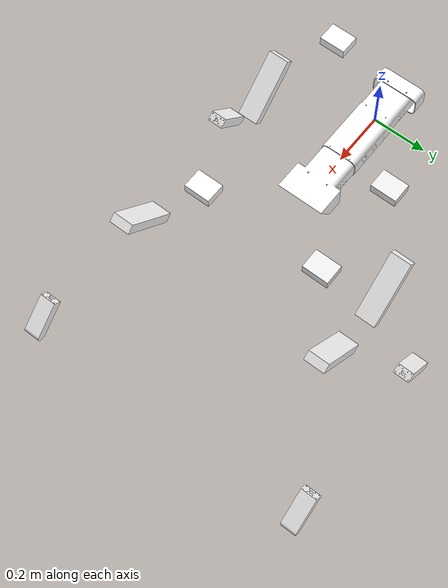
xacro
<?xml version="1.0"?>
<robot name="fyp_quadruped" xmlns:xacro="http://ros.org/wiki/xacro">

  <!-- Model Dimensions -->
  <xacro:property name="pi" value="3.1415" />
  <xacro:property name="body_length" value="0.55" />
  <xacro:property name="body_width" value="0.16" />
  <xacro:property name="body_height" value="0.08" />
  <xacro:property name="shoulder_length" value="0.07" />
  <xacro:property name="shoulder_width" value="0.09" />
  <xacro:property name="shoulder_height" value="0.03" />
  <xacro:property name="thigh_length" value="0.03" />
  <xacro:property name="thigh_width" value="0.07" />
  <xacro:property name="thigh_height" value="0.21" />
  <xacro:property name="shank_length" value="0.03" />
  <xacro:property name="shank_width" value="0.05" />
  <xacro:property name="shank_height" value="0.13" />
  <xacro:property name="damping_value" value="10" />
  <xacro:property name="friction_value" value="0.1" />

  <!-- Import Rviz colors -->
  <xacro:include filename="$(find fyp_quadruped)/urdf/materials.xacro" />

  <!-- Inertias -->
  <xacro:macro name="box_inertial" params="mass length width height">
    <inertial>
      <mass value="${mass}" />
      <inertia ixx="${mass*(height*height+length*length)/12.0}" ixy="0.0" ixz="0.0" iyy="${mass*(width*width+length*length)/12.0}" iyz="0.0" izz="${mass*(width*width+height*height)/12.0}" />
    </inertial>
  </xacro:macro>

  <!-- Main Body -->
  <link name="dummy_link">
    <visual>
      <geometry>
        <box size="0.01 0.01 0.01"/>
      </geometry>
    </visual>
    <collision>
      <geometry>
        <box size="0.01 0.01 0.01"/>
      </geometry>
    </collision>
    <inertial>
      <mass value="0.01" />
      <inertia ixx="0.00001" ixy="0.0" ixz="0.0" iyy="0.00001" iyz="0.0" izz="0.00001" />
    </inertial>
  </link>

  <link name="base_link">
    <visual>
      <origin xyz="0.0 0.0 0.2416"/>
      <geometry>
       <mesh filename="package://fyp_quadruped/meshes/body/body.stl" scale="0.001 0.001 0.001"/>
      </geometry>
      <material name="white"/>
    </visual>
    <collision>
      <origin xyz="0.0 0.0 0.2416"/>
      <geometry>
        <box size="${body_width} ${body_width} ${body_height}"/>
      </geometry>
    </collision>
    <inertial>
      <mass value="3" />
      <inertia ixx="${3*(2*2+5*5)/12.0}" ixy="0.0" ixz="0.0" iyy="${3*(3*3+5*5)/12.0}" iyz="0.0" izz="${3*(3*3+2*2)/12.0}" />
    </inertial>
  </link>

  <joint name="dummy_to_base_joint" type="fixed">
    <parent link="dummy_link"/>
    <child link="base_link"/>
    <origin xyz="0.0 0.0 0.0"/>
  </joint>

  <gazebo reference="base_link">
    <mu1>100000.0</mu1>
    <mu2>100000.0</mu2>
    <material>Gazebo/White</material>
  </gazebo>

  <!--Left Front Leg-->
  <link name="shoulder_link_lf">
    <visual>
      <origin xyz="0.38 0.1415 0.2616"/>
      <geometry>
       <mesh filename="package://fyp_quadruped/meshes/leg/shoulder.stl" scale="0.001 0.001 0.001"/>
      </geometry>
    </visual>
    <collision>
      <origin xyz="0.38 0.1415 0.2616"/>
      <geometry>
        <box size="${shoulder_length} ${shoulder_width} ${shoulder_height}"/>
      </geometry>
      <material name="white"/>
    </collision>
    <xacro:box_inertial mass="${0.0625}" length="${shoulder_length}" width="${shoulder_width}" height="${shoulder_height}"/>
  </link>

  <joint name="shoulder_joint_lf" type="revolute">
    <limit effort="100.0" lower="${-0.5*pi}" upper="${0.5*pi}" velocity="0.5"/>
    <parent link="base_link"/>
    <child link="shoulder_link_lf"/>
    <origin xyz="0.38 0.1415 0.2616"/>
    <axis xyz="1 0 0"/>
    <dynamics damping="${damping_value}" friction="${friction_value}"/>
  </joint>
  <gazebo reference="shoulder_link_lf">
    <mu1>100000.0</mu1>
    <mu2>100000.0</mu2>
    <material>Gazebo/White</material>
  </gazebo>

  <link name="thigh_link_lf">
    <visual>
      <origin xyz="0.2565 0.16 0.1131" rpy="0.0 0.785 0.0"/>
      <geometry>
       <mesh filename="package://fyp_quadruped/meshes/leg/thigh.stl" scale="0.001 0.001 0.001"/>
      </geometry>
      <material name="white"/>
    </visual>
    <collision>
      <origin xyz="0.2565 0.16 0.1131" rpy="0.0 0.785 0.0"/>
      <geometry>
        <box size="${thigh_length} ${thigh_width} ${thigh_height}"/>
      </geometry>
    </collision>
    <xacro:box_inertial mass="${0.125}" length="${thigh_length}" width="${thigh_width}" height="${thigh_height}"/>
  </link>

  <joint name="elbow_joint_lf" type="revolute">
    <limit effort="100.0" lower="${-0.5*pi}" upper="${0.5*pi}" velocity="0.5"/>
    <parent link="shoulder_link_lf"/>
    <child link="thigh_link_lf"/>
    <origin xyz="0.2565 0.16 0.1131" rpy="0.0 0.0 0.0"/>
    <axis xyz="0 1 0"/>
    <dynamics damping="${damping_value}" friction="${friction_value}"/>
  </joint>
  <gazebo reference="thigh_link_lf">
    <mu1>100000.0</mu1>
    <mu2>100000.0</mu2>
    <material>Gazebo/White</material>
  </gazebo>

  <link name="shank_link_lf">
    <visual>
      <origin xyz="0.3696 0.17 0.0" rpy="0.0 5.5 0.0"/>
      <geometry>
       <mesh filename="package://fyp_quadruped/meshes/leg/shank.stl" scale="0.001 0.001 0.001"/>
      </geometry>
      <material name="white"/>
    </visual>
    <collision>
      <origin xyz="0.3696 0.17 0.0" rpy="0.0 5.5 0.0"/>
      <geometry>
        <box size="${shank_length} ${shank_width} ${shank_height}"/>
      </geometry>
    </collision>
    <xacro:box_inertial mass="${0.125}" length="${shank_length}" width="${shank_width}" height="${shank_height}"/>
  </link>

  <joint name="knee_joint_lf" type="revolute">
    <limit effort="100.0" lower="${-0.5*pi}" upper="${0.5*pi}" velocity="0.5"/>
    <origin xyz="0.3696 0.17 0.0"/>
    <axis xyz="0 1 0"/>
    <parent link="thigh_link_lf"/>
    <child link="shank_link_lf"/>
    <dynamics damping="${damping_value}" friction="${friction_value}"/>
  </joint>
  <gazebo reference="shank_link_lf">
    <mu1>100000.0</mu1>
    <mu2>100000.0</mu2>
    <material>Gazebo/White</material>
  </gazebo>

 <!--Right Front Leg-->
  <link name="shoulder_link_rf">
    <visual>
      <origin xyz="0.38 -0.064 0.2616"/>
      <geometry>
       <mesh filename="package://fyp_quadruped/meshes/leg/shoulder.stl" scale="0.001 0.001 0.001"/>
      </geometry>
      <material name="white"/>
    </visual>
    <collision>
      <origin xyz="0.38 -0.064 0.2616"/>
      <geometry>
        <box size="${shoulder_length} ${shoulder_width} ${shoulder_height}"/>
      </geometry>
    </collision>
    <xacro:box_inertial mass="${0.0625}" length="${shoulder_length}" width="${shoulder_width}" height="${shoulder_height}"/>
  </link>

  <joint name="shoulder_joint_rf" type="revolute">
    <limit effort="100.0" lower="${-0.5*pi}" upper="${0.5*pi}" velocity="0.5"/>
    <origin xyz="0.38 -0.064 0.2616"/>
    <axis xyz="1 0 0"/>
    <parent link="base_link"/>
    <child link="shoulder_link_rf"/>
    <dynamics damping="${damping_value}" friction="${friction_value}"/>
  </joint>
  <gazebo reference="shoulder_link_rf">
    <mu1>100000.0</mu1>
    <mu2>100000.0</mu2>
    <material>Gazebo/White</material>
  </gazebo>

  <link name="thigh_link_rf">
    <visual>q
      <origin xyz="0.2565 -0.064 0.1131" rpy="0.0 0.785 0.0"/>
      <geometry>
       <mesh filename="package://fyp_quadruped/meshes/leg/thigh.stl" scale="0.001 0.001 0.001"/>
      </geometry>
      <material name="white"/>
    </visual>
    <collision>
      <origin xyz="0.2565 -0.064 0.1131" rpy="0.0 0.785 0.0"/>
      <geometry>
        <box size="${thigh_length} ${thigh_width} ${thigh_height}"/>
      </geometry>
    </collision>
    <xacro:box_inertial mass="${0.125}" length="${thigh_length}" width="${thigh_width}" height="${thigh_height}"/>
  </link>

  <joint name="elbow_joint_rf" type="revolute">
    <limit effort="100.0" lower="${-0.5*pi}" upper="${0.5*pi}" velocity="0.5"/>
    <parent link="shoulder_link_rf"/>
    <child link="thigh_link_rf"/>
    <origin xyz="0.2565 -0.064 0.1131" rpy="0.0 0.0 0.0"/>
    <axis xyz="0 1 0"/>
    <dynamics damping="${damping_value}" friction="${friction_value}"/>
  </joint>
  <gazebo reference="thigh_link_rf">
    <mu1>100000.0</mu1>
    <mu2>100000.0</mu2>
    <material>Gazebo/White</material>
  </gazebo>

  <link name="shank_link_rf">
    <visual>
      <origin xyz="0.3696 -0.06 0.0" rpy="0.0 5.5 0.0"/>
      <geometry>
       <mesh filename="package://fyp_quadruped/meshes/leg/shank.stl" scale="0.001 0.001 0.001"/>
      </geometry>
      <material name="white"/>
    </visual>
    <collision>
      <origin xyz="0.3696 -0.06 0.0" rpy="0.0 5.5 0.0"/>
      <geometry>
        <box size="${shank_length} ${shank_width} ${shank_height}"/>
      </geometry>
    </collision>
    <xacro:box_inertial mass="${0.125}" length="${shank_length}" width="${shank_width}" height="${shank_height}"/>
  </link>

  <joint name="knee_joint_rf" type="revolute">
    <limit effort="100.0" lower="${-0.5*pi}" upper="${0.5*pi}" velocity="0.5"/>
    <origin xyz="0.3696 -0.06 0.0"/>
    <axis xyz="0 1 0"/>
    <parent link="thigh_link_rf"/>
    <child link="shank_link_rf"/>
    <dynamics damping="${damping_value}" friction="${friction_value}"/>
  </joint>
  <gazebo reference="shank_link_rf">
    <mu1>100000.0</mu1>
    <mu2>100000.0</mu2>
    <material>Gazebo/White</material>
  </gazebo>

  <!--Left Back Leg-->
  <link name="shoulder_link_lb">
    <visual>
      <origin xyz="0.06 0.1415 0.2616"/>
      <geometry>
       <mesh filename="package://fyp_quadruped/meshes/leg/shoulder.stl" scale="0.001 0.001 0.001"/>
      </geometry>
    </visual>
    <collision>
      <origin xyz="0.06 0.1415 0.2616"/>
      <geometry>
        <box size="${shoulder_length} ${shoulder_width} ${shoulder_height}"/>
      </geometry>
      <material name="white"/>
    </collision>
    <xacro:box_inertial mass="${0.0625}" length="${shoulder_length}" width="${shoulder_width}" height="${shoulder_height}"/>
  </link>

  <joint name="shoulder_joint_lb" type="revolute">
    <limit effort="100.0" lower="${-0.5*pi}" upper="${0.5*pi}" velocity="0.5"/>
    <parent link="base_link"/>
    <child link="shoulder_link_lb"/>
    <origin xyz="0.38 0.1415 0.2616"/>
    <axis xyz="1 0 0"/>
    <dynamics damping="${damping_value}" friction="${friction_value}"/>
  </joint>
  <gazebo reference="shoulder_link_lb">
    <mu1>100000.0</mu1>
    <mu2>100000.0</mu2>
    <material>Gazebo/White</material>
  </gazebo>

  <link name="thigh_link_lb">
    <visual>
      <origin xyz="0.2085 0.16 0.0919" rpy="0.0 5.5 0.0"/>
      <geometry>
       <mesh filename="package://fyp_quadruped/meshes/leg/thigh.stl" scale="0.001 0.001 0.001"/>
      </geometry>
      <material name="white"/>
    </visual>
    <collision>
      <origin xyz="0.2085 0.16 0.0919" rpy="0.0 5.5 0.0"/>
      <geometry>
        <box size="${thigh_length} ${thigh_width} ${thigh_height}"/>
      </geometry>
    </collision>
    <xacro:box_inertial mass="${0.125}" length="${thigh_length}" width="${thigh_width}" height="${thigh_height}"/>
  </link>

  <joint name="elbow_joint_lb" type="revolute">
    <limit effort="100.0" lower="${-0.5*pi}" upper="${0.5*pi}" velocity="0.5"/>
    <parent link="shoulder_link_lb"/>
    <child link="thigh_link_lb"/>
    <origin xyz="0.2085 0.16 0.0919" rpy="0.0 0.0 0.0"/>
    <axis xyz="0 1 0"/>
    <dynamics damping="${damping_value}" friction="${friction_value}"/>
  </joint>
  <gazebo reference="thigh_link_lb">
    <mu1>100000.0</mu1>
    <mu2>100000.0</mu2>
    <material>Gazebo/White</material>
  </gazebo>

  <link name="shank_link_lb">
    <visual>
      <origin xyz="0.0954 0.17 0.0212" rpy="0.0 0.785 0.0"/>
      <geometry>
       <mesh filename="package://fyp_quadruped/meshes/leg/shank.stl" scale="0.001 0.001 0.001"/>
      </geometry>
      <material name="white"/>
    </visual>
    <collision>
      <origin xyz="0.0954 0.17 0.0212" rpy="0.0 0.785 0.0"/>
      <geometry>
        <box size="${shank_length} ${shank_width} ${shank_height}"/>
      </geometry>
    </collision>
    <xacro:box_inertial mass="${0.125}" length="${shank_length}" width="${shank_width}" height="${shank_height}"/>
  </link>

  <joint name="knee_joint_lb" type="revolute">
    <limit effort="100.0" lower="${-0.5*pi}" upper="${0.5*pi}" velocity="0.5"/>
    <origin xyz="0.0954 0.17 0.0212"/>
    <axis xyz="0 1 0"/>
    <parent link="thigh_link_lb"/>
    <child link="shank_link_lb"/>
    <dynamics damping="${damping_value}" friction="${friction_value}"/>
  </joint>
  <gazebo reference="shank_link_lb">
    <mu1>100000.0</mu1>
    <mu2>100000.0</mu2>
    <material>Gazebo/White</material>
  </gazebo>

 <!--Right Back Leg-->
  <link name="shoulder_link_rb">
    <visual>
      <origin xyz="0.06 -0.064 0.2616"/>
      <geometry>
       <mesh filename="package://fyp_quadruped/meshes/leg/shoulder.stl" scale="0.001 0.001 0.001"/>
      </geometry>
      <material name="white"/>
    </visual>
    <collision>
      <origin xyz="0.06 -0.064 0.2616"/>
      <geometry>
        <box size="${shoulder_length} ${shoulder_width} ${shoulder_height}"/>
      </geometry>
    </collision>
    <xacro:box_inertial mass="${0.0625}" length="${shoulder_length}" width="${shoulder_width}" height="${shoulder_height}"/>
  </link>

  <joint name="shoulder_joint_rb" type="revolute">
    <limit effort="100.0" lower="${-0.5*pi}" upper="${0.5*pi}" velocity="0.5"/>
    <origin xyz="0.06 -0.064 0.2616"/>
    <axis xyz="1 0 0"/>
    <parent link="base_link"/>
    <child link="shoulder_link_rb"/>
    <dynamics damping="${damping_value}" friction="${friction_value}"/>
  </joint>
  <gazebo reference="shoulder_link_rb">
    <mu1>100000.0</mu1>
    <mu2>100000.0</mu2>
    <material>Gazebo/White</material>
  </gazebo>

  <link name="thigh_link_rb">
    <visual>
      <origin xyz="0.2085 -0.064 0.0919" rpy="0.0 5.5 0.0"/>
      <geometry>
       <mesh filename="package://fyp_quadruped/meshes/leg/thigh.stl" scale="0.001 0.001 0.001"/>
      </geometry>
      <material name="white"/>
    </visual>
    <collision>
      <origin xyz="0.2085 -0.064 0.0919" rpy="0.0 5.5 0.0"/>
      <geometry>
        <box size="${thigh_length} ${thigh_width} ${thigh_height}"/>
      </geometry>
    </collision>
    <xacro:box_inertial mass="${0.125}" length="${thigh_length}" width="${thigh_width}" height="${thigh_height}"/>
  </link>

  <joint name="elbow_joint_rb" type="revolute">
    <limit effort="100.0" lower="${-0.5*pi}" upper="${0.5*pi}" velocity="0.5"/>
    <parent link="shoulder_link_rb"/>
    <child link="thigh_link_rb"/>
    <origin xyz="0.2085 -0.064 0.0919" rpy="0.0 0.0 0.0"/>
    <axis xyz="0 1 0"/>
    <dynamics damping="${damping_value}" friction="${friction_value}"/>
  </joint>
  <gazebo reference="thigh_link_rb">
    <mu1>100000.0</mu1>
    <mu2>100000.0</mu2>
    <material>Gazebo/White</material>
  </gazebo>

  <link name="shank_link_rb">
    <visual>
      <origin xyz="0.0954 -0.06 0.0212" rpy="0.0 0.785 0.0"/>
      <geometry>
       <mesh filename="package://fyp_quadruped/meshes/leg/shank.stl" scale="0.001 0.001 0.001"/>
      </geometry>
      <material name="white"/>
    </visual>
    <collision>
      <origin xyz="0.0954 -0.06 0.0212" rpy="0.0 0.785 0.0"/>
      <geometry>
        <box size="${shank_length} ${shank_width} ${shank_height}"/>
      </geometry>
    </collision>
    <xacro:box_inertial mass="${0.125}" length="${shank_length}" width="${shank_width}" height="${shank_height}"/>
  </link>

  <joint name="knee_joint_rb" type="revolute">
    <limit effort="100.0" lower="${-0.5*pi}" upper="${0.5*pi}" velocity="0.5"/>
    <origin xyz="0.0954 -0.06 0.0212"/>
    <axis xyz="0 1 0"/>
    <parent link="thigh_link_rb"/>
    <child link="shank_link_rb"/>
    <dynamics damping="${damping_value}" friction="${friction_value}"/>
  </joint>
  <gazebo reference="shank_link_rb">
    <mu1>100000.0</mu1>
    <mu2>100000.0</mu2>
    <material>Gazebo/White</material>
  </gazebo>

  <gazebo>
    <plugin name="gazebo_ros_control" filename="libgazebo_ros_control.so">
      <robotNamespace>/fyp_quadruped</robotNamespace>
    </plugin>
  </gazebo>

  <transmission name="tran1">
    <type>transmission_interface/SimpleTransmission</type>
    <joint name="shoulder_joint_lf">
      <hardwareInterface>EffortJointInterface</hardwareInterface>
    </joint>
    <actuator name="motor1">
      <hardwareInterface>EffortJointInterface</hardwareInterface>
      <mechanicalReduction>1</mechanicalReduction>
    </actuator>
  </transmission>

  <transmission name="tran2">
    <type>transmission_interface/SimpleTransmission</type>
    <joint name="elbow_joint_lf">
      <hardwareInterface>EffortJointInterface</hardwareInterface>
    </joint>
    <actuator name="motor2">
      <hardwareInterface>EffortJointInterface</hardwareInterface>
      <mechanicalReduction>1</mechanicalReduction>
    </actuator>
  </transmission>

  <transmission name="tran3">
    <type>transmission_interface/SimpleTransmission</type>
    <joint name="knee_joint_lf">
      <hardwareInterface>EffortJointInterface</hardwareInterface>
    </joint>
    <actuator name="motor3">
      <hardwareInterface>EffortJointInterface</hardwareInterface>
      <mechanicalReduction>1</mechanicalReduction>
    </actuator>
  </transmission>

</robot>

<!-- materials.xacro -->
<robot>

  <material name="black">
    <color rgba="0.0 0.0 0.0 1.0"/>
  </material>

  <material name="blue">
    <color rgba="0.0 0.0 1.0 1.0"/>
  </material>

  <material name="green">
    <color rgba="0.0 1.0 0.0 1.0"/>
  </material>

  <material name="grey">
    <color rgba="0.2 0.2 0.2 1.0"/>
  </material>

  <material name="orange">
    <color rgba="${255/255} ${108/255} ${10/255} 1.0"/>
  </material>

  <material name="brown">
    <color rgba="${222/255} ${207/255} ${195/255} 1.0"/>
  </material>

  <material name="red">
    <color rgba="1.0 0.0 0.0 1.0"/>
  </material>

  <material name="white">
    <color rgba="1.0 1.0 1.0 1.0"/>
  </material>

</robot>
